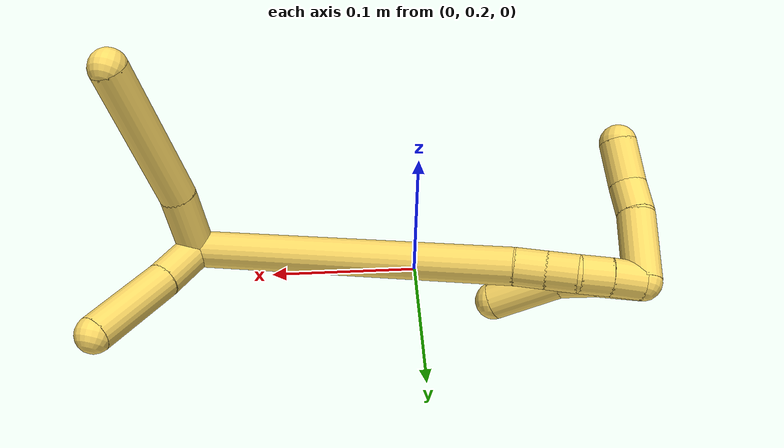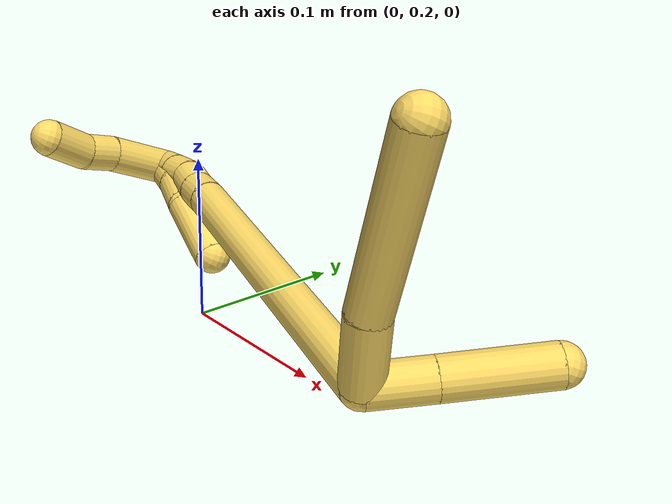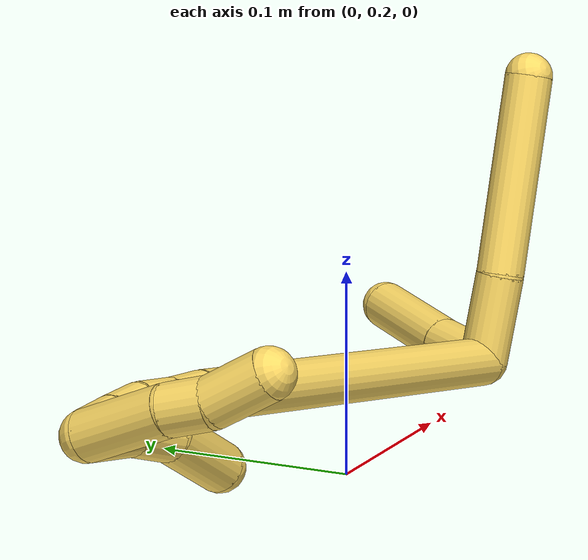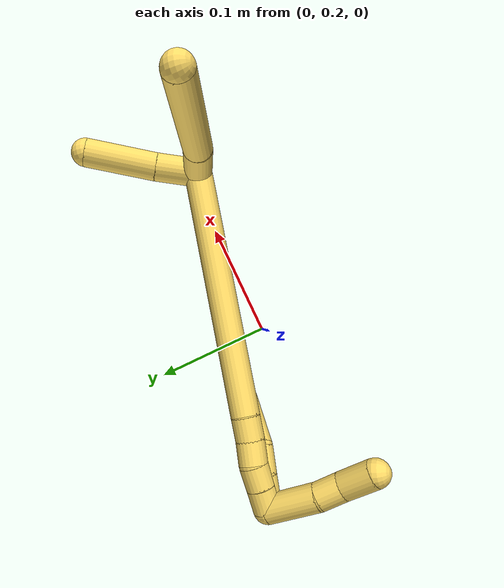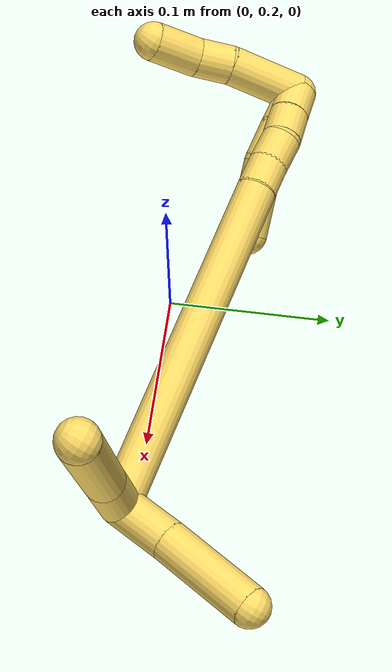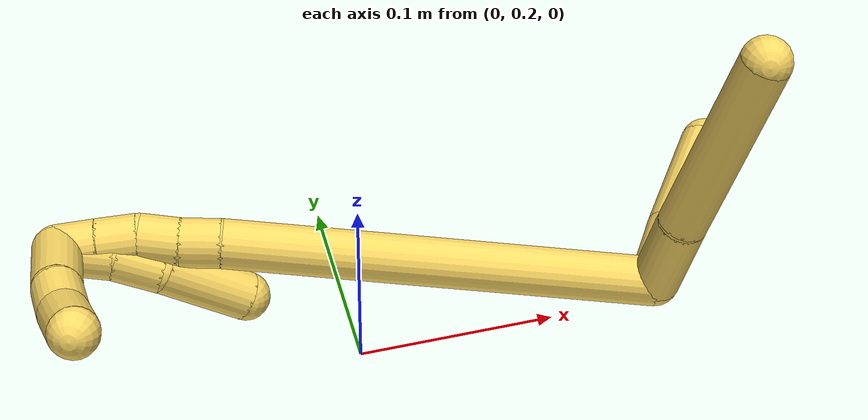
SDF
<sdf version="1.7">
 <world name="default">
  <model name="5">
   <static>0</static>
   <link name="5">
    <collision name="collision-cylinder-e_1_2_8">
     <pose>0.014975 -0.013309 -0.011405 2.27932 0.707049 1.35221</pose>
     <geometry><cylinder><radius>0.0125</radius><length>0.046106</length></cylinder></geometry>
     <surface>
      <friction><ode><mu>1.16</mu><mu2>1.16</mu2><slip1>0</slip1><slip2>0</slip2></ode></friction>
      <contact><ode><kp>1e+06</kp><kd>1</kd><max_vel>0</max_vel><min_depth>0.001</min_depth></ode></contact>
     </surface>
    </collision>
    <visual name="visual-cylinder-e_1_2_8">
     <pose>0.014975 -0.013309 -0.011405 2.27932 0.707049 1.35221</pose>
     <geometry><cylinder><radius>0.0125</radius><length>0.046106</length></cylinder></geometry>
     <material><ambient>1 0.858824 0.4 1</ambient></material>
    </visual>
    <collision name="collision-cylinder-e_2_8_6">
     <pose>0.067732 -0.055975 -0.043038 2.1741 0.814388 1.37475</pose>
     <geometry><cylinder><radius>0.0125</radius><length>0.103894</length></cylinder></geometry>
     <surface>
      <friction><ode><mu>1.16</mu><mu2>1.16</mu2><slip1>0</slip1><slip2>0</slip2></ode></friction>
      <contact><ode><kp>1e+06</kp><kd>1</kd><max_vel>0</max_vel><min_depth>0.001</min_depth></ode></contact>
     </surface>
    </collision>
    <visual name="visual-cylinder-e_2_8_6">
     <pose>0.067732 -0.055975 -0.043038 2.1741 0.814388 1.37475</pose>
     <geometry><cylinder><radius>0.0125</radius><length>0.103894</length></cylinder></geometry>
     <material><ambient>1 0.858824 0.4 1</ambient></material>
    </visual>
    <collision name="collision-cylinder-e_1_2_9">
     <pose>0.009796 -0.004105 0.01548 0.259225 0.548927 0.073368</pose>
     <geometry><cylinder><radius>0.0125</radius><length>0.037547</length></cylinder></geometry>
     <surface>
      <friction><ode><mu>1.16</mu><mu2>1.16</mu2><slip1>0</slip1><slip2>0</slip2></ode></friction>
      <contact><ode><kp>1e+06</kp><kd>1</kd><max_vel>0</max_vel><min_depth>0.001</min_depth></ode></contact>
     </surface>
    </collision>
    <visual name="visual-cylinder-e_1_2_9">
     <pose>0.009796 -0.004105 0.01548 0.259225 0.548927 0.073368</pose>
     <geometry><cylinder><radius>0.0125</radius><length>0.037547</length></cylinder></geometry>
     <material><ambient>1 0.858824 0.4 1</ambient></material>
    </visual>
    <collision name="collision-cylinder-e_2_9_5">
     <pose>0.037582 -0.014869 0.0556 0.263935 0.613986 0.084111</pose>
     <geometry><cylinder><radius>0.0125</radius><length>0.062453</length></cylinder></geometry>
     <surface>
      <friction><ode><mu>1.16</mu><mu2>1.16</mu2><slip1>0</slip1><slip2>0</slip2></ode></friction>
      <contact><ode><kp>1e+06</kp><kd>1</kd><max_vel>0</max_vel><min_depth>0.001</min_depth></ode></contact>
     </surface>
    </collision>
    <visual name="visual-cylinder-e_2_9_5">
     <pose>0.037582 -0.014869 0.0556 0.263935 0.613986 0.084111</pose>
     <geometry><cylinder><radius>0.0125</radius><length>0.062453</length></cylinder></geometry>
     <material><ambient>1 0.858824 0.4 1</ambient></material>
    </visual>
    <collision name="collision-cylinder-e_1_2_10">
     <pose>-0.081766 -0.071884 -0.00748 1.67448 -0.846952 -0.927434</pose>
     <geometry><cylinder><radius>0.0125</radius><length>0.218256</length></cylinder></geometry>
     <surface>
      <friction><ode><mu>1.16</mu><mu2>1.16</mu2><slip1>0</slip1><slip2>0</slip2></ode></friction>
      <contact><ode><kp>1e+06</kp><kd>1</kd><max_vel>0</max_vel><min_depth>0.001</min_depth></ode></contact>
     </surface>
    </collision>
    <visual name="visual-cylinder-e_1_2_10">
     <pose>-0.081766 -0.071884 -0.00748 1.67448 -0.846952 -0.927434</pose>
     <geometry><cylinder><radius>0.0125</radius><length>0.218256</length></cylinder></geometry>
     <material><ambient>1 0.858824 0.4 1</ambient></material>
    </visual>
    <collision name="collision-cylinder-e_2_10_11">
     <pose>-0.171828 -0.149868 -0.015298 1.62612 -0.936054 -0.98135</pose>
     <geometry><cylinder><radius>0.0125</radius><length>0.020606</length></cylinder></geometry>
     <surface>
      <friction><ode><mu>1.16</mu><mu2>1.16</mu2><slip1>0</slip1><slip2>0</slip2></ode></friction>
      <contact><ode><kp>1e+06</kp><kd>1</kd><max_vel>0</max_vel><min_depth>0.001</min_depth></ode></contact>
     </surface>
    </collision>
    <visual name="visual-cylinder-e_2_10_11">
     <pose>-0.171828 -0.149868 -0.015298 1.62612 -0.936054 -0.98135</pose>
     <geometry><cylinder><radius>0.0125</radius><length>0.020606</length></cylinder></geometry>
     <material><ambient>1 0.858824 0.4 1</ambient></material>
    </visual>
    <collision name="collision-cylinder-e_3_11_12">
     <pose>-0.187782 -0.162736 -0.015675 1.57651 -0.847047 -0.851337</pose>
     <geometry><cylinder><radius>0.0125</radius><length>0.020441</length></cylinder></geometry>
     <surface>
      <friction><ode><mu>1.16</mu><mu2>1.16</mu2><slip1>0</slip1><slip2>0</slip2></ode></friction>
      <contact><ode><kp>1e+06</kp><kd>1</kd><max_vel>0</max_vel><min_depth>0.001</min_depth></ode></contact>
     </surface>
    </collision>
    <visual name="visual-cylinder-e_3_11_12">
     <pose>-0.187782 -0.162736 -0.015675 1.57651 -0.847047 -0.851337</pose>
     <geometry><cylinder><radius>0.0125</radius><length>0.020441</length></cylinder></geometry>
     <material><ambient>1 0.858824 0.4 1</ambient></material>
    </visual>
    <collision name="collision-cylinder-e_4_12_13">
     <pose>-0.204303 -0.174299 -0.016706 1.77488 -1.06604 -1.25408</pose>
     <geometry><cylinder><radius>0.0125</radius><length>0.020251</length></cylinder></geometry>
     <surface>
      <friction><ode><mu>1.16</mu><mu2>1.16</mu2><slip1>0</slip1><slip2>0</slip2></ode></friction>
      <contact><ode><kp>1e+06</kp><kd>1</kd><max_vel>0</max_vel><min_depth>0.001</min_depth></ode></contact>
     </surface>
    </collision>
    <visual name="visual-cylinder-e_4_12_13">
     <pose>-0.204303 -0.174299 -0.016706 1.77488 -1.06604 -1.25408</pose>
     <geometry><cylinder><radius>0.0125</radius><length>0.020251</length></cylinder></geometry>
     <material><ambient>1 0.858824 0.4 1</ambient></material>
    </visual>
    <collision name="collision-cylinder-e_5_13_1">
     <pose>-0.222269 -0.183698 -0.018376 1.71694 -1.09819 -1.23283</pose>
     <geometry><cylinder><radius>0.0125</radius><length>0.020447</length></cylinder></geometry>
     <surface>
      <friction><ode><mu>1.16</mu><mu2>1.16</mu2><slip1>0</slip1><slip2>0</slip2></ode></friction>
      <contact><ode><kp>1e+06</kp><kd>1</kd><max_vel>0</max_vel><min_depth>0.001</min_depth></ode></contact>
     </surface>
    </collision>
    <visual name="visual-cylinder-e_5_13_1">
     <pose>-0.222269 -0.183698 -0.018376 1.71694 -1.09819 -1.23283</pose>
     <geometry><cylinder><radius>0.0125</radius><length>0.020447</length></cylinder></geometry>
     <material><ambient>1 0.858824 0.4 1</ambient></material>
    </visual>
    <collision name="collision-cylinder-e_1_1_14">
     <pose>-0.220765 -0.178814 -0.018573 -1.52013 0.840376 -0.803256</pose>
     <geometry><cylinder><radius>0.0125</radius><length>0.028477</length></cylinder></geometry>
     <surface>
      <friction><ode><mu>1.16</mu><mu2>1.16</mu2><slip1>0</slip1><slip2>0</slip2></ode></friction>
      <contact><ode><kp>1e+06</kp><kd>1</kd><max_vel>0</max_vel><min_depth>0.001</min_depth></ode></contact>
     </surface>
    </collision>
    <visual name="visual-cylinder-e_1_1_14">
     <pose>-0.220765 -0.178814 -0.018573 -1.52013 0.840376 -0.803256</pose>
     <geometry><cylinder><radius>0.0125</radius><length>0.028477</length></cylinder></geometry>
     <material><ambient>1 0.858824 0.4 1</ambient></material>
    </visual>
    <collision name="collision-cylinder-e_2_14_15">
     <pose>-0.202799 -0.159522 -0.016878 -1.44767 0.640261 -0.57011</pose>
     <geometry><cylinder><radius>0.0125</radius><length>0.02464</length></cylinder></geometry>
     <surface>
      <friction><ode><mu>1.16</mu><mu2>1.16</mu2><slip1>0</slip1><slip2>0</slip2></ode></friction>
      <contact><ode><kp>1e+06</kp><kd>1</kd><max_vel>0</max_vel><min_depth>0.001</min_depth></ode></contact>
     </surface>
    </collision>
    <visual name="visual-cylinder-e_2_14_15">
     <pose>-0.202799 -0.159522 -0.016878 -1.44767 0.640261 -0.57011</pose>
     <geometry><cylinder><radius>0.0125</radius><length>0.02464</length></cylinder></geometry>
     <material><ambient>1 0.858824 0.4 1</ambient></material>
    </visual>
    <collision name="collision-cylinder-e_3_15_4">
     <pose>-0.18509 -0.130178 -0.007878 -1.19156 0.457256 -0.312941</pose>
     <geometry><cylinder><radius>0.0125</radius><length>0.046883</length></cylinder></geometry>
     <surface>
      <friction><ode><mu>1.16</mu><mu2>1.16</mu2><slip1>0</slip1><slip2>0</slip2></ode></friction>
      <contact><ode><kp>1e+06</kp><kd>1</kd><max_vel>0</max_vel><min_depth>0.001</min_depth></ode></contact>
     </surface>
    </collision>
    <visual name="visual-cylinder-e_3_15_4">
     <pose>-0.18509 -0.130178 -0.007878 -1.19156 0.457256 -0.312941</pose>
     <geometry><cylinder><radius>0.0125</radius><length>0.046883</length></cylinder></geometry>
     <material><ambient>1 0.858824 0.4 1</ambient></material>
    </visual>
    <collision name="collision-cylinder-e_1_1_16">
     <pose>-0.228705 -0.184765 -0.041982 -2.98854 0.114451 -1.28333</pose>
     <geometry><cylinder><radius>0.0125</radius><length>0.046704</length></cylinder></geometry>
     <surface>
      <friction><ode><mu>1.16</mu><mu2>1.16</mu2><slip1>0</slip1><slip2>0</slip2></ode></friction>
      <contact><ode><kp>1e+06</kp><kd>1</kd><max_vel>0</max_vel><min_depth>0.001</min_depth></ode></contact>
     </surface>
    </collision>
    <visual name="visual-cylinder-e_1_1_16">
     <pose>-0.228705 -0.184765 -0.041982 -2.98854 0.114451 -1.28333</pose>
     <geometry><cylinder><radius>0.0125</radius><length>0.046704</length></cylinder></geometry>
     <material><ambient>1 0.858824 0.4 1</ambient></material>
    </visual>
    <collision name="collision-cylinder-e_2_16_17">
     <pose>-0.224374 -0.177649 -0.075439 -2.81397 0.148487 -0.845696</pose>
     <geometry><cylinder><radius>0.0125</radius><length>0.022491</length></cylinder></geometry>
     <surface>
      <friction><ode><mu>1.16</mu><mu2>1.16</mu2><slip1>0</slip1><slip2>0</slip2></ode></friction>
      <contact><ode><kp>1e+06</kp><kd>1</kd><max_vel>0</max_vel><min_depth>0.001</min_depth></ode></contact>
     </surface>
    </collision>
    <visual name="visual-cylinder-e_2_16_17">
     <pose>-0.224374 -0.177649 -0.075439 -2.81397 0.148487 -0.845696</pose>
     <geometry><cylinder><radius>0.0125</radius><length>0.022491</length></cylinder></geometry>
     <material><ambient>1 0.858824 0.4 1</ambient></material>
    </visual>
    <collision name="collision-cylinder-e_3_17_3">
     <pose>-0.217862 -0.172292 -0.100481 -3.01962 0.320197 -2.41855</pose>
     <geometry><cylinder><radius>0.0125</radius><length>0.030806</length></cylinder></geometry>
     <surface>
      <friction><ode><mu>1.16</mu><mu2>1.16</mu2><slip1>0</slip1><slip2>0</slip2></ode></friction>
      <contact><ode><kp>1e+06</kp><kd>1</kd><max_vel>0</max_vel><min_depth>0.001</min_depth></ode></contact>
     </surface>
    </collision>
    <visual name="visual-cylinder-e_3_17_3">
     <pose>-0.217862 -0.172292 -0.100481 -3.01962 0.320197 -2.41855</pose>
     <geometry><cylinder><radius>0.0125</radius><length>0.030806</length></cylinder></geometry>
     <material><ambient>1 0.858824 0.4 1</ambient></material>
    </visual>
    <collision name="collision-sphere-3">
     <pose>-0.213014 -0.170513 -0.114992 0 -0 0</pose>
     <geometry><sphere><radius>0.0125</radius></sphere></geometry>
     <surface>
      <friction><ode><mu>1.16</mu><mu2>1.16</mu2><slip1>0</slip1><slip2>0</slip2></ode></friction>
      <contact><ode><kp>1e+06</kp><kd>1</kd><max_vel>0</max_vel><min_depth>0.001</min_depth></ode></contact>
     </surface>
    </collision>
    <visual name="visual-sphere-3">
     <pose>-0.213014 -0.170513 -0.114992 0 -0 0</pose>
     <geometry><sphere><radius>0.0125</radius></sphere></geometry>
     <material><ambient>1 0.858824 0.4 1</ambient></material>
    </visual>
    <collision name="collision-sphere-17">
     <pose>-0.222711 -0.174071 -0.085969 0 -0 0</pose>
     <geometry><sphere><radius>0.0125</radius></sphere></geometry>
     <surface>
      <friction><ode><mu>1.16</mu><mu2>1.16</mu2><slip1>0</slip1><slip2>0</slip2></ode></friction>
      <contact><ode><kp>1e+06</kp><kd>1</kd><max_vel>0</max_vel><min_depth>0.001</min_depth></ode></contact>
     </surface>
    </collision>
    <visual name="visual-sphere-17">
     <pose>-0.222711 -0.174071 -0.085969 0 -0 0</pose>
     <geometry><sphere><radius>0.0125</radius></sphere></geometry>
     <material><ambient>1 0.858824 0.4 1</ambient></material>
    </visual>
    <collision name="collision-sphere-16">
     <pose>-0.226038 -0.181228 -0.064909 0 -0 0</pose>
     <geometry><sphere><radius>0.0125</radius></sphere></geometry>
     <surface>
      <friction><ode><mu>1.16</mu><mu2>1.16</mu2><slip1>0</slip1><slip2>0</slip2></ode></friction>
      <contact><ode><kp>1e+06</kp><kd>1</kd><max_vel>0</max_vel><min_depth>0.001</min_depth></ode></contact>
     </surface>
    </collision>
    <visual name="visual-sphere-16">
     <pose>-0.226038 -0.181228 -0.064909 0 -0 0</pose>
     <geometry><sphere><radius>0.0125</radius></sphere></geometry>
     <material><ambient>1 0.858824 0.4 1</ambient></material>
    </visual>
    <collision name="collision-sphere-4">
     <pose>-0.174741 -0.110639 -9.1e-05 0 -0 0</pose>
     <geometry><sphere><radius>0.0125</radius></sphere></geometry>
     <surface>
      <friction><ode><mu>1.16</mu><mu2>1.16</mu2><slip1>0</slip1><slip2>0</slip2></ode></friction>
      <contact><ode><kp>1e+06</kp><kd>1</kd><max_vel>0</max_vel><min_depth>0.001</min_depth></ode></contact>
     </surface>
    </collision>
    <visual name="visual-sphere-4">
     <pose>-0.174741 -0.110639 -9.1e-05 0 -0 0</pose>
     <geometry><sphere><radius>0.0125</radius></sphere></geometry>
     <material><ambient>1 0.858824 0.4 1</ambient></material>
    </visual>
    <collision name="collision-sphere-15">
     <pose>-0.195439 -0.149717 -0.015665 0 -0 0</pose>
     <geometry><sphere><radius>0.0125</radius></sphere></geometry>
     <surface>
      <friction><ode><mu>1.16</mu><mu2>1.16</mu2><slip1>0</slip1><slip2>0</slip2></ode></friction>
      <contact><ode><kp>1e+06</kp><kd>1</kd><max_vel>0</max_vel><min_depth>0.001</min_depth></ode></contact>
     </surface>
    </collision>
    <visual name="visual-sphere-15">
     <pose>-0.195439 -0.149717 -0.015665 0 -0 0</pose>
     <geometry><sphere><radius>0.0125</radius></sphere></geometry>
     <material><ambient>1 0.858824 0.4 1</ambient></material>
    </visual>
    <collision name="collision-sphere-14">
     <pose>-0.210159 -0.169327 -0.018091 0 -0 0</pose>
     <geometry><sphere><radius>0.0125</radius></sphere></geometry>
     <surface>
      <friction><ode><mu>1.16</mu><mu2>1.16</mu2><slip1>0</slip1><slip2>0</slip2></ode></friction>
      <contact><ode><kp>1e+06</kp><kd>1</kd><max_vel>0</max_vel><min_depth>0.001</min_depth></ode></contact>
     </surface>
    </collision>
    <visual name="visual-sphere-14">
     <pose>-0.210159 -0.169327 -0.018091 0 -0 0</pose>
     <geometry><sphere><radius>0.0125</radius></sphere></geometry>
     <material><ambient>1 0.858824 0.4 1</ambient></material>
    </visual>
    <collision name="collision-sphere-1">
     <pose>-0.231371 -0.188302 -0.019054 0 -0 0</pose>
     <geometry><sphere><radius>0.0125</radius></sphere></geometry>
     <surface>
      <friction><ode><mu>1.16</mu><mu2>1.16</mu2><slip1>0</slip1><slip2>0</slip2></ode></friction>
      <contact><ode><kp>1e+06</kp><kd>1</kd><max_vel>0</max_vel><min_depth>0.001</min_depth></ode></contact>
     </surface>
    </collision>
    <visual name="visual-sphere-1">
     <pose>-0.231371 -0.188302 -0.019054 0 -0 0</pose>
     <geometry><sphere><radius>0.0125</radius></sphere></geometry>
     <material><ambient>1 0.858824 0.4 1</ambient></material>
    </visual>
    <collision name="collision-sphere-13">
     <pose>-0.213166 -0.179093 -0.017698 0 -0 0</pose>
     <geometry><sphere><radius>0.0125</radius></sphere></geometry>
     <surface>
      <friction><ode><mu>1.16</mu><mu2>1.16</mu2><slip1>0</slip1><slip2>0</slip2></ode></friction>
      <contact><ode><kp>1e+06</kp><kd>1</kd><max_vel>0</max_vel><min_depth>0.001</min_depth></ode></contact>
     </surface>
    </collision>
    <visual name="visual-sphere-13">
     <pose>-0.213166 -0.179093 -0.017698 0 -0 0</pose>
     <geometry><sphere><radius>0.0125</radius></sphere></geometry>
     <material><ambient>1 0.858824 0.4 1</ambient></material>
    </visual>
    <collision name="collision-sphere-12">
     <pose>-0.195441 -0.169504 -0.015714 0 -0 0</pose>
     <geometry><sphere><radius>0.0125</radius></sphere></geometry>
     <surface>
      <friction><ode><mu>1.16</mu><mu2>1.16</mu2><slip1>0</slip1><slip2>0</slip2></ode></friction>
      <contact><ode><kp>1e+06</kp><kd>1</kd><max_vel>0</max_vel><min_depth>0.001</min_depth></ode></contact>
     </surface>
    </collision>
    <visual name="visual-sphere-12">
     <pose>-0.195441 -0.169504 -0.015714 0 -0 0</pose>
     <geometry><sphere><radius>0.0125</radius></sphere></geometry>
     <material><ambient>1 0.858824 0.4 1</ambient></material>
    </visual>
    <collision name="collision-sphere-11">
     <pose>-0.180124 -0.155968 -0.015636 0 -0 0</pose>
     <geometry><sphere><radius>0.0125</radius></sphere></geometry>
     <surface>
      <friction><ode><mu>1.16</mu><mu2>1.16</mu2><slip1>0</slip1><slip2>0</slip2></ode></friction>
      <contact><ode><kp>1e+06</kp><kd>1</kd><max_vel>0</max_vel><min_depth>0.001</min_depth></ode></contact>
     </surface>
    </collision>
    <visual name="visual-sphere-11">
     <pose>-0.180124 -0.155968 -0.015636 0 -0 0</pose>
     <geometry><sphere><radius>0.0125</radius></sphere></geometry>
     <material><ambient>1 0.858824 0.4 1</ambient></material>
    </visual>
    <collision name="collision-sphere-8">
     <pose>0.02995 -0.026617 -0.02281 0 -0 0</pose>
     <geometry><sphere><radius>0.0125</radius></sphere></geometry>
     <surface>
      <friction><ode><mu>1.16</mu><mu2>1.16</mu2><slip1>0</slip1><slip2>0</slip2></ode></friction>
      <contact><ode><kp>1e+06</kp><kd>1</kd><max_vel>0</max_vel><min_depth>0.001</min_depth></ode></contact>
     </surface>
    </collision>
    <visual name="visual-sphere-8">
     <pose>0.02995 -0.026617 -0.02281 0 -0 0</pose>
     <geometry><sphere><radius>0.0125</radius></sphere></geometry>
     <material><ambient>1 0.858824 0.4 1</ambient></material>
    </visual>
    <collision name="collision-sphere-2">
     <geometry><sphere><radius>0.0125</radius></sphere></geometry>
     <surface>
      <friction><ode><mu>1.16</mu><mu2>1.16</mu2><slip1>0</slip1><slip2>0</slip2></ode></friction>
      <contact><ode><kp>1e+06</kp><kd>1</kd><max_vel>0</max_vel><min_depth>0.001</min_depth></ode></contact>
     </surface>
    </collision>
    <visual name="visual-sphere-2">
     <geometry><sphere><radius>0.0125</radius></sphere></geometry>
     <material><ambient>1 0.858824 0.4 1</ambient></material>
    </visual>
    <collision name="collision-sphere-9">
     <pose>0.019591 -0.008211 0.030961 0 -0 0</pose>
     <geometry><sphere><radius>0.0125</radius></sphere></geometry>
     <surface>
      <friction><ode><mu>1.16</mu><mu2>1.16</mu2><slip1>0</slip1><slip2>0</slip2></ode></friction>
      <contact><ode><kp>1e+06</kp><kd>1</kd><max_vel>0</max_vel><min_depth>0.001</min_depth></ode></contact>
     </surface>
    </collision>
    <visual name="visual-sphere-9">
     <pose>0.019591 -0.008211 0.030961 0 -0 0</pose>
     <geometry><sphere><radius>0.0125</radius></sphere></geometry>
     <material><ambient>1 0.858824 0.4 1</ambient></material>
    </visual>
    <collision name="collision-sphere-6">
     <pose>0.105513 -0.085333 -0.063265 0 -0 0</pose>
     <geometry><sphere><radius>0.0125</radius></sphere></geometry>
     <surface>
      <friction><ode><mu>1.16</mu><mu2>1.16</mu2><slip1>0</slip1><slip2>0</slip2></ode></friction>
      <contact><ode><kp>1e+06</kp><kd>1</kd><max_vel>0</max_vel><min_depth>0.001</min_depth></ode></contact>
     </surface>
    </collision>
    <visual name="visual-sphere-6">
     <pose>0.105513 -0.085333 -0.063265 0 -0 0</pose>
     <geometry><sphere><radius>0.0125</radius></sphere></geometry>
     <material><ambient>1 0.858824 0.4 1</ambient></material>
    </visual>
    <collision name="collision-sphere-5">
     <pose>0.055572 -0.021528 0.080239 0 -0 0</pose>
     <geometry><sphere><radius>0.0125</radius></sphere></geometry>
     <surface>
      <friction><ode><mu>1.16</mu><mu2>1.16</mu2><slip1>0</slip1><slip2>0</slip2></ode></friction>
      <contact><ode><kp>1e+06</kp><kd>1</kd><max_vel>0</max_vel><min_depth>0.001</min_depth></ode></contact>
     </surface>
    </collision>
    <visual name="visual-sphere-5">
     <pose>0.055572 -0.021528 0.080239 0 -0 0</pose>
     <geometry><sphere><radius>0.0125</radius></sphere></geometry>
     <material><ambient>1 0.858824 0.4 1</ambient></material>
    </visual>
    <collision name="collision-sphere-10">
     <pose>-0.163532 -0.143768 -0.014961 0 -0 0</pose>
     <geometry><sphere><radius>0.0125</radius></sphere></geometry>
     <surface>
      <friction><ode><mu>1.16</mu><mu2>1.16</mu2><slip1>0</slip1><slip2>0</slip2></ode></friction>
      <contact><ode><kp>1e+06</kp><kd>1</kd><max_vel>0</max_vel><min_depth>0.001</min_depth></ode></contact>
     </surface>
    </collision>
    <visual name="visual-sphere-10">
     <pose>-0.163532 -0.143768 -0.014961 0 -0 0</pose>
     <geometry><sphere><radius>0.0125</radius></sphere></geometry>
     <material><ambient>1 0.858824 0.4 1</ambient></material>
    </visual>
    <inertial>
     <pose>-0.08782 -0.093279 -0.01599 0 -0 0</pose>
     <mass>0.75</mass>
     <inertia><ixx>-9e-06</ixx><ixy>0</ixy><ixz>0</ixz><iyy>0.00013</iyy><iyz>0</iyz><izz>0.001182</izz></inertia>
    </inertial>
   </link>
   <pose>0.150792 0.192825 0.021132 -2.1158 -0.545021 0.038404</pose>
  </model>
 </world>
</sdf>
